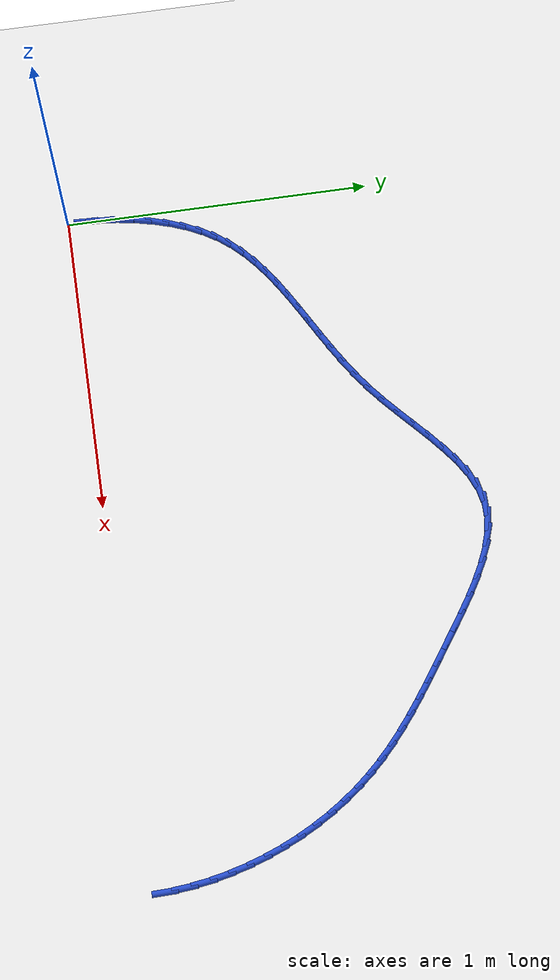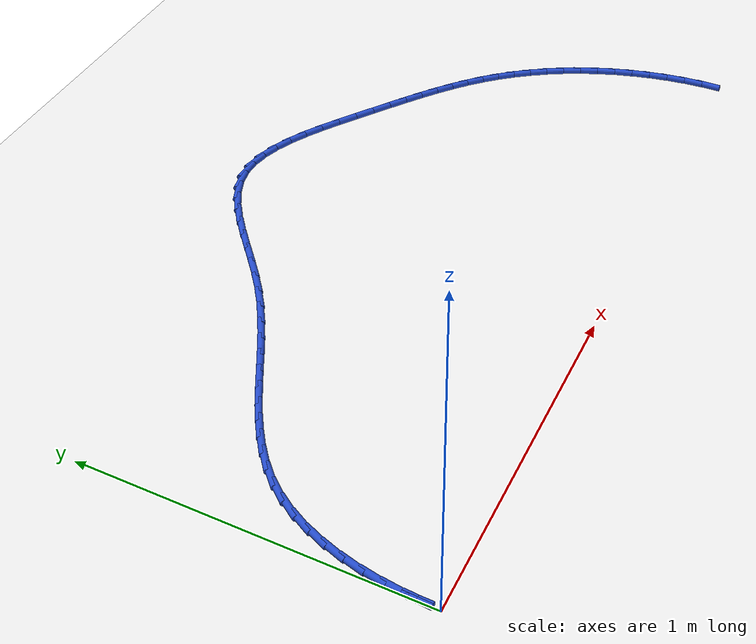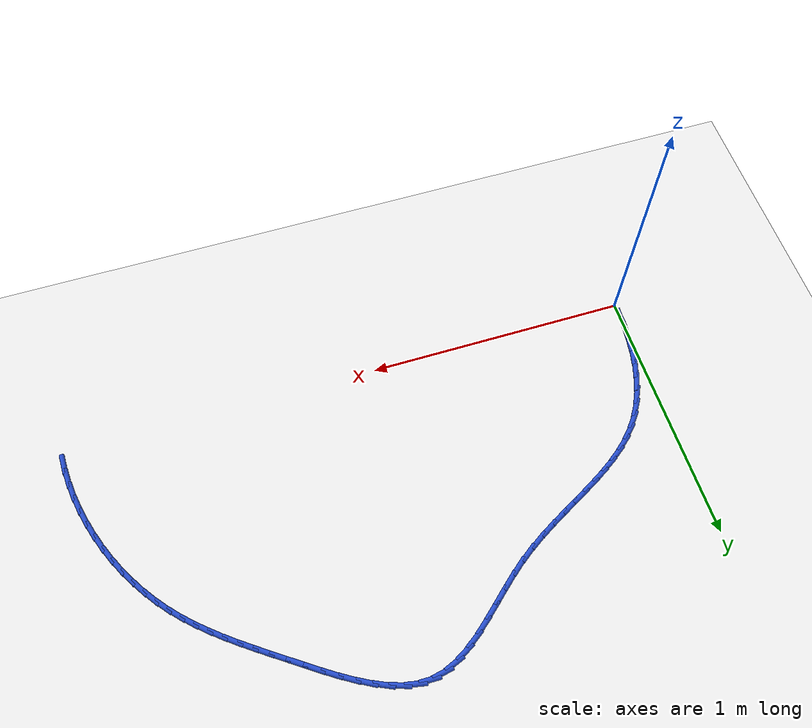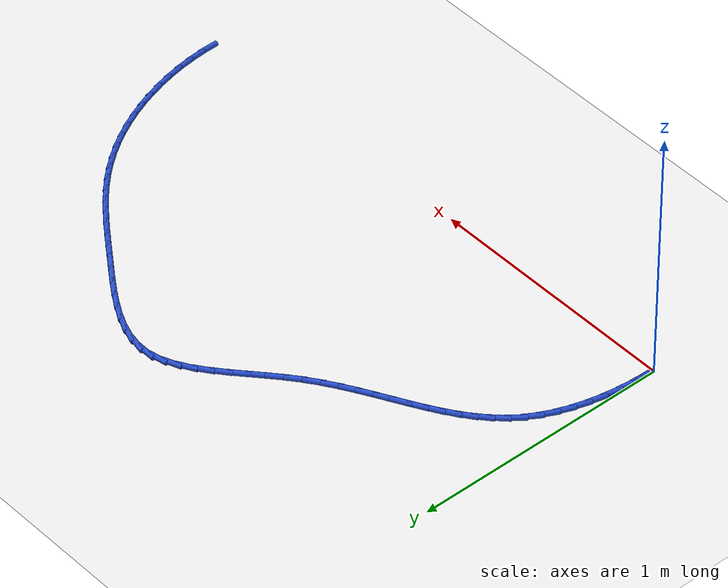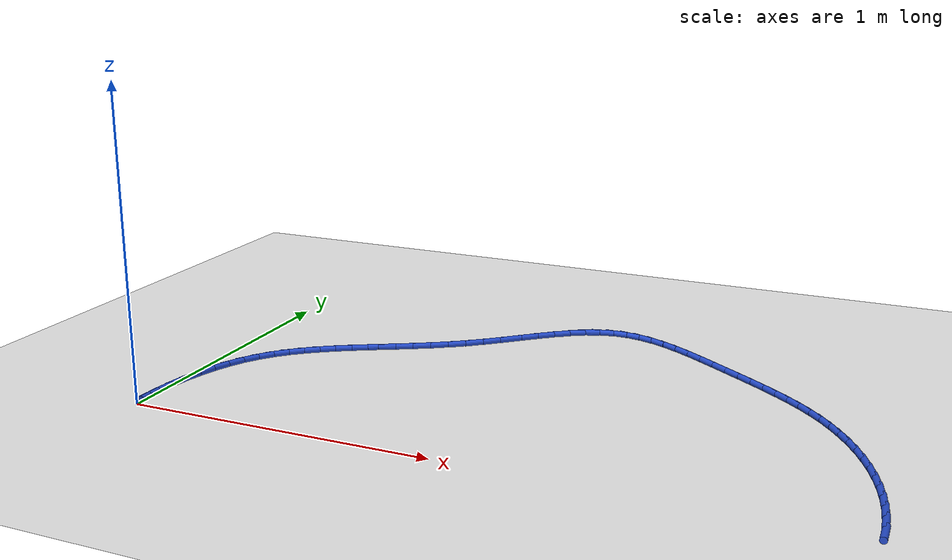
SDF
<sdf version="1.6">
 <world name="default">
  <model name="ground_plane">
   <static>1</static>
   <link name="link">
    <collision name="collision">
     <geometry><plane><normal>0 0 1</normal><size>100 100</size></plane></geometry>
     <surface><friction><ode><mu>100</mu><mu2>50</mu2></ode></friction></surface>
    </collision>
    <visual name="visual">
     <cast_shadows>0</cast_shadows>
     <geometry><plane><normal>0 0 1</normal><size>100 100</size></plane></geometry>
     <material>
      <script><uri>file://media/materials/scripts/gazebo.material</uri><name>Gazebo/WhiteGlow</name></script>
     </material>
    </visual>
   </link>
  </model>
  <model name="line">
   <link name="link_1">
    <pose>0.0006554067136951246 0.05990737557985292 0.01 0 1.57 1.507897528662807</pose>
    <collision name="collision">
     <geometry><cylinder><radius>0.01</radius><length>0.08</length></cylinder></geometry>
    </collision>
    <visual name="visual">
     <material>
      <script><name>Gazebo/Blue</name><uri>file://media/materials/scripts/gazebo.material</uri></script>
     </material>
     <geometry><cylinder><radius>0.01</radius><length>0.08</length></cylinder></geometry>
    </visual>
   </link>
   <link name="link_2">
    <pose>0.00443188199745281 0.11986867601575932 0.01 0 1.57 1.452899979616151</pose>
    <collision name="collision">
     <geometry><cylinder><radius>0.01</radius><length>0.08</length></cylinder></geometry>
    </collision>
    <visual name="visual">
     <material>
      <script><name>Gazebo/Blue</name><uri>file://media/materials/scripts/gazebo.material</uri></script>
     </material>
     <geometry><cylinder><radius>0.01</radius><length>0.08</length></cylinder></geometry>
    </visual>
   </link>
   <link name="link_3">
    <pose>0.011476056066806885 0.1793404663440371 0.01 0 1.57 1.3937061683359213</pose>
    <collision name="collision">
     <geometry><cylinder><radius>0.01</radius><length>0.08</length></cylinder></geometry>
    </collision>
    <visual name="visual">
     <material>
      <script><name>Gazebo/Blue</name><uri>file://media/materials/scripts/gazebo.material</uri></script>
     </material>
     <geometry><cylinder><radius>0.01</radius><length>0.08</length></cylinder></geometry>
    </visual>
   </link>
   <link name="link_4">
    <pose>0.021934559137291136 0.23777931160100413 0.01 0 1.57 1.3290669928238046</pose>
    <collision name="collision">
     <geometry><cylinder><radius>0.01</radius><length>0.08</length></cylinder></geometry>
    </collision>
    <visual name="visual">
     <material>
      <script><name>Gazebo/Blue</name><uri>file://media/materials/scripts/gazebo.material</uri></script>
     </material>
     <geometry><cylinder><radius>0.01</radius><length>0.08</length></cylinder></geometry>
    </visual>
   </link>
   <link name="link_5">
    <pose>0.03595402142443932 0.29464177682297815 0.01 0 1.57 1.2576273267027285</pose>
    <collision name="collision">
     <geometry><cylinder><radius>0.01</radius><length>0.08</length></cylinder></geometry>
    </collision>
    <visual name="visual">
     <material>
      <script><name>Gazebo/Blue</name><uri>file://media/materials/scripts/gazebo.material</uri></script>
     </material>
     <geometry><cylinder><radius>0.01</radius><length>0.08</length></cylinder></geometry>
    </visual>
   </link>
   <link name="link_6">
    <pose>0.05368107314378521 0.34938442704627704 0.01 0 1.57 1.1779452021089472</pose>
    <collision name="collision">
     <geometry><cylinder><radius>0.01</radius><length>0.08</length></cylinder></geometry>
    </collision>
    <visual name="visual">
     <material>
      <script><name>Gazebo/Blue</name><uri>file://media/materials/scripts/gazebo.material</uri></script>
     </material>
     <geometry><cylinder><radius>0.01</radius><length>0.08</length></cylinder></geometry>
    </visual>
   </link>
   <link name="link_7">
    <pose>0.07526234451086258 0.40146382730721863 0.01 0 1.57 1.0885700350027294</pose>
    <collision name="collision">
     <geometry><cylinder><radius>0.01</radius><length>0.08</length></cylinder></geometry>
    </collision>
    <visual name="visual">
     <material>
      <script><name>Gazebo/Blue</name><uri>file://media/materials/scripts/gazebo.material</uri></script>
     </material>
     <geometry><cylinder><radius>0.01</radius><length>0.08</length></cylinder></geometry>
    </visual>
   </link>
   <link name="link_8">
    <pose>0.1008444657412052 0.45033654264212064 0.01 0 1.57 0.9882158499053794</pose>
    <collision name="collision">
     <geometry><cylinder><radius>0.01</radius><length>0.08</length></cylinder></geometry>
    </collision>
    <visual name="visual">
     <material>
      <script><name>Gazebo/Blue</name><uri>file://media/materials/scripts/gazebo.material</uri></script>
     </material>
     <geometry><cylinder><radius>0.01</radius><length>0.08</length></cylinder></geometry>
    </visual>
   </link>
   <link name="link_9">
    <pose>0.13057406705034685 0.49545913808730097 0.01 0 1.57 0.8787944253209584</pose>
    <collision name="collision">
     <geometry><cylinder><radius>0.01</radius><length>0.08</length></cylinder></geometry>
    </collision>
    <visual name="visual">
     <material>
      <script><name>Gazebo/Blue</name><uri>file://media/materials/scripts/gazebo.material</uri></script>
     </material>
     <geometry><cylinder><radius>0.01</radius><length>0.08</length></cylinder></geometry>
    </visual>
   </link>
   <link name="link_10">
    <pose>0.16452487049318146 0.5364275307556597 0.01 0 1.57 0.7765168628768073</pose>
    <collision name="collision">
     <geometry><cylinder><radius>0.01</radius><length>0.08</length></cylinder></geometry>
    </collision>
    <visual name="visual">
     <material>
      <script><name>Gazebo/Blue</name><uri>file://media/materials/scripts/gazebo.material</uri></script>
     </material>
     <geometry><cylinder><radius>0.01</radius><length>0.08</length></cylinder></geometry>
    </visual>
   </link>
   <link name="link_11">
    <pose>0.20236895746316275 0.5736053084806385 0.01 0 1.57 0.6892861540333426</pose>
    <collision name="collision">
     <geometry><cylinder><radius>0.01</radius><length>0.08</length></cylinder></geometry>
    </collision>
    <visual name="visual">
     <material>
      <script><name>Gazebo/Blue</name><uri>file://media/materials/scripts/gazebo.material</uri></script>
     </material>
     <geometry><cylinder><radius>0.01</radius><length>0.08</length></cylinder></geometry>
    </visual>
   </link>
   <link name="link_12">
    <pose>0.24364084680346426 0.6076189875096353 0.01 0 1.57 0.6184591095254687</pose>
    <collision name="collision">
     <geometry><cylinder><radius>0.01</radius><length>0.08</length></cylinder></geometry>
    </collision>
    <visual name="visual">
     <material>
      <script><name>Gazebo/Blue</name><uri>file://media/materials/scripts/gazebo.material</uri></script>
     </material>
     <geometry><cylinder><radius>0.01</radius><length>0.08</length></cylinder></geometry>
    </visual>
   </link>
   <link name="link_13">
    <pose>0.28787493582306944 0.6390953163828605 0.01 0 1.57 0.564105356108904</pose>
    <collision name="collision">
     <geometry><cylinder><radius>0.01</radius><length>0.08</length></cylinder></geometry>
    </collision>
    <visual name="visual">
     <material>
      <script><name>Gazebo/Blue</name><uri>file://media/materials/scripts/gazebo.material</uri></script>
     </material>
     <geometry><cylinder><radius>0.01</radius><length>0.08</length></cylinder></geometry>
    </visual>
   </link>
   <link name="link_14">
    <pose>0.3346056218309619 0.6686610436405264 0.01 0 1.57 0.5255853220571985</pose>
    <collision name="collision">
     <geometry><cylinder><radius>0.01</radius><length>0.08</length></cylinder></geometry>
    </collision>
    <visual name="visual">
     <material>
      <script><name>Gazebo/Blue</name><uri>file://media/materials/scripts/gazebo.material</uri></script>
     </material>
     <geometry><cylinder><radius>0.01</radius><length>0.08</length></cylinder></geometry>
    </visual>
   </link>
   <link name="link_15">
    <pose>0.3833673021361251 0.6969429178228435 0.01 0 1.57 0.5020019516751363</pose>
    <collision name="collision">
     <geometry><cylinder><radius>0.01</radius><length>0.08</length></cylinder></geometry>
    </collision>
    <visual name="visual">
     <material>
      <script><name>Gazebo/Blue</name><uri>file://media/materials/scripts/gazebo.material</uri></script>
     </material>
     <geometry><cylinder><radius>0.01</radius><length>0.08</length></cylinder></geometry>
    </visual>
   </link>
   <link name="link_16">
    <pose>0.4336943740475426 0.7245676874700234 0.01 0 1.57 0.4924784088963204</pose>
    <collision name="collision">
     <geometry><cylinder><radius>0.01</radius><length>0.08</length></cylinder></geometry>
    </collision>
    <visual name="visual">
     <material>
      <script><name>Gazebo/Blue</name><uri>file://media/materials/scripts/gazebo.material</uri></script>
     </material>
     <geometry><cylinder><radius>0.01</radius><length>0.08</length></cylinder></geometry>
    </visual>
   </link>
   <link name="link_17">
    <pose>0.48512123487419795 0.7521621011222775 0.01 0 1.57 0.496290160502064</pose>
    <collision name="collision">
     <geometry><cylinder><radius>0.01</radius><length>0.08</length></cylinder></geometry>
    </collision>
    <visual name="visual">
     <material>
      <script><name>Gazebo/Blue</name><uri>file://media/materials/scripts/gazebo.material</uri></script>
     </material>
     <geometry><cylinder><radius>0.01</radius><length>0.08</length></cylinder></geometry>
    </visual>
   </link>
   <link name="link_18">
    <pose>0.5371822819250747 0.7803529073198169 0.01 0 1.57 0.5128951686160405</pose>
    <collision name="collision">
     <geometry><cylinder><radius>0.01</radius><length>0.08</length></cylinder></geometry>
    </collision>
    <visual name="visual">
     <material>
      <script><name>Gazebo/Blue</name><uri>file://media/materials/scripts/gazebo.material</uri></script>
     </material>
     <geometry><cylinder><radius>0.01</radius><length>0.08</length></cylinder></geometry>
    </visual>
   </link>
   <link name="link_19">
    <pose>0.5894119125091561 0.8097668546028528 0.01 0 1.57 0.5418945127169501</pose>
    <collision name="collision">
     <geometry><cylinder><radius>0.01</radius><length>0.08</length></cylinder></geometry>
    </collision>
    <visual name="visual">
     <material>
      <script><name>Gazebo/Blue</name><uri>file://media/materials/scripts/gazebo.material</uri></script>
     </material>
     <geometry><cylinder><radius>0.01</radius><length>0.08</length></cylinder></geometry>
    </visual>
   </link>
   <link name="link_20">
    <pose>0.6413445239354262 0.8410306915115966 0.01 0 1.57 0.5829411087831547</pose>
    <collision name="collision">
     <geometry><cylinder><radius>0.01</radius><length>0.08</length></cylinder></geometry>
    </collision>
    <visual name="visual">
     <material>
      <script><name>Gazebo/Blue</name><uri>file://media/materials/scripts/gazebo.material</uri></script>
     </material>
     <geometry><cylinder><radius>0.01</radius><length>0.08</length></cylinder></geometry>
    </visual>
   </link>
   <link name="link_21">
    <pose>0.6925145135128681 0.8747711665862594 0.01 0 1.57 0.6354356215921534</pose>
    <collision name="collision">
     <geometry><cylinder><radius>0.01</radius><length>0.08</length></cylinder></geometry>
    </collision>
    <visual name="visual">
     <material>
      <script><name>Gazebo/Blue</name><uri>file://media/materials/scripts/gazebo.material</uri></script>
     </material>
     <geometry><cylinder><radius>0.01</radius><length>0.08</length></cylinder></geometry>
    </visual>
   </link>
   <link name="link_22">
    <pose>0.7424600651113547 0.9116046713899145 0.01 0 1.57 0.6866020841144945</pose>
    <collision name="collision">
     <geometry><cylinder><radius>0.01</radius><length>0.08</length></cylinder></geometry>
    </collision>
    <visual name="visual">
     <material>
      <script><name>Gazebo/Blue</name><uri>file://media/materials/scripts/gazebo.material</uri></script>
     </material>
     <geometry><cylinder><radius>0.01</radius><length>0.08</length></cylinder></geometry>
    </visual>
   </link>
   <link name="link_23">
    <pose>0.7909972088710969 0.9513876341431788 0.01 0 1.57 0.7169393255033091</pose>
    <collision name="collision">
     <geometry><cylinder><radius>0.01</radius><length>0.08</length></cylinder></geometry>
    </collision>
    <visual name="visual">
     <material>
      <script><name>Gazebo/Blue</name><uri>file://media/materials/scripts/gazebo.material</uri></script>
     </material>
     <geometry><cylinder><radius>0.01</radius><length>0.08</length></cylinder></geometry>
    </visual>
   </link>
   <link name="link_24">
    <pose>0.8384046021460019 0.992711108069178 0.01 0 1.57 0.7255983637787893</pose>
    <collision name="collision">
     <geometry><cylinder><radius>0.01</radius><length>0.08</length></cylinder></geometry>
    </collision>
    <visual name="visual">
     <material>
      <script><name>Gazebo/Blue</name><uri>file://media/materials/scripts/gazebo.material</uri></script>
     </material>
     <geometry><cylinder><radius>0.01</radius><length>0.08</length></cylinder></geometry>
    </visual>
   </link>
   <link name="link_25">
    <pose>0.8850046838966965 1.0340463952202192 0.01 0 1.57 0.7122536385395872</pose>
    <collision name="collision">
     <geometry><cylinder><radius>0.01</radius><length>0.08</length></cylinder></geometry>
    </collision>
    <visual name="visual">
     <material>
      <script><name>Gazebo/Blue</name><uri>file://media/materials/scripts/gazebo.material</uri></script>
     </material>
     <geometry><cylinder><radius>0.01</radius><length>0.08</length></cylinder></geometry>
    </visual>
   </link>
   <link name="link_26">
    <pose>0.9311198930838075 1.0738647976486095 0.01 0 1.57 0.6748815703993579</pose>
    <collision name="collision">
     <geometry><cylinder><radius>0.01</radius><length>0.08</length></cylinder></geometry>
    </collision>
    <visual name="visual">
     <material>
      <script><name>Gazebo/Blue</name><uri>file://media/materials/scripts/gazebo.material</uri></script>
     </material>
     <geometry><cylinder><radius>0.01</radius><length>0.08</length></cylinder></geometry>
    </visual>
   </link>
   <link name="link_27">
    <pose>0.9770726686679618 1.110637617406656 0.01 0 1.57 0.6095547273452617</pose>
    <collision name="collision">
     <geometry><cylinder><radius>0.01</radius><length>0.08</length></cylinder></geometry>
    </collision>
    <visual name="visual">
     <material>
      <script><name>Gazebo/Blue</name><uri>file://media/materials/scripts/gazebo.material</uri></script>
     </material>
     <geometry><cylinder><radius>0.01</radius><length>0.08</length></cylinder></geometry>
    </visual>
   </link>
   <link name="link_28">
    <pose>1.023185449609786 1.1428361565466656 0.01 0 1.57 0.5105248269753733</pose>
    <collision name="collision">
     <geometry><cylinder><radius>0.01</radius><length>0.08</length></cylinder></geometry>
    </collision>
    <visual name="visual">
     <material>
      <script><name>Gazebo/Blue</name><uri>file://media/materials/scripts/gazebo.material</uri></script>
     </material>
     <geometry><cylinder><radius>0.01</radius><length>0.08</length></cylinder></geometry>
    </visual>
   </link>
   <link name="link_29">
    <pose>1.0697806748699066 1.1689317171209446 0.01 0 1.57 0.37145025236749324</pose>
    <collision name="collision">
     <geometry><cylinder><radius>0.01</radius><length>0.08</length></cylinder></geometry>
    </collision>
    <visual name="visual">
     <material>
      <script><name>Gazebo/Blue</name><uri>file://media/materials/scripts/gazebo.material</uri></script>
     </material>
     <geometry><cylinder><radius>0.01</radius><length>0.08</length></cylinder></geometry>
    </visual>
   </link>
   <link name="link_30">
    <pose>1.1171807834089509 1.1873956011818017 0.01 0 1.57 0.18941812533854546</pose>
    <collision name="collision">
     <geometry><cylinder><radius>0.01</radius><length>0.08</length></cylinder></geometry>
    </collision>
    <visual name="visual">
     <material>
      <script><name>Gazebo/Blue</name><uri>file://media/materials/scripts/gazebo.material</uri></script>
     </material>
     <geometry><cylinder><radius>0.01</radius><length>0.08</length></cylinder></geometry>
    </visual>
   </link>
   <link name="link_31">
    <pose>1.1657082141875454 1.1966991107815428 0.01 0 1.57 -0.018596459467815084</pose>
    <collision name="collision">
     <geometry><cylinder><radius>0.01</radius><length>0.08</length></cylinder></geometry>
    </collision>
    <visual name="visual">
     <material>
      <script><name>Gazebo/Blue</name><uri>file://media/materials/scripts/gazebo.material</uri></script>
     </material>
     <geometry><cylinder><radius>0.01</radius><length>0.08</length></cylinder></geometry>
    </visual>
   </link>
   <link name="link_32">
    <pose>1.2155856056608831 1.1957714609543273 0.01 0 1.57 -0.19829320553366106</pose>
    <collision name="collision">
     <geometry><cylinder><radius>0.01</radius><length>0.08</length></cylinder></geometry>
    </collision>
    <visual name="visual">
     <material>
      <script><name>Gazebo/Blue</name><uri>file://media/materials/scripts/gazebo.material</uri></script>
     </material>
     <geometry><cylinder><radius>0.01</radius><length>0.08</length></cylinder></geometry>
    </visual>
   </link>
   <link name="link_33">
    <pose>1.266604457563094 1.185520053282519 0.01 0 1.57 -0.3365253667606733</pose>
    <collision name="collision">
     <geometry><cylinder><radius>0.01</radius><length>0.08</length></cylinder></geometry>
    </collision>
    <visual name="visual">
     <material>
      <script><name>Gazebo/Blue</name><uri>file://media/materials/scripts/gazebo.material</uri></script>
     </material>
     <geometry><cylinder><radius>0.01</radius><length>0.08</length></cylinder></geometry>
    </visual>
   </link>
   <link name="link_34">
    <pose>1.3184398722162711 1.1673863536379754 0.01 0 1.57 -0.4390601657703653</pose>
    <collision name="collision">
     <geometry><cylinder><radius>0.01</radius><length>0.08</length></cylinder></geometry>
    </collision>
    <visual name="visual">
     <material>
      <script><name>Gazebo/Blue</name><uri>file://media/materials/scripts/gazebo.material</uri></script>
     </material>
     <geometry><cylinder><radius>0.01</radius><length>0.08</length></cylinder></geometry>
    </visual>
   </link>
   <link name="link_35">
    <pose>1.3707669501230046 1.1428118362409518 0.01 0 1.57 -0.5130559663326266</pose>
    <collision name="collision">
     <geometry><cylinder><radius>0.01</radius><length>0.08</length></cylinder></geometry>
    </collision>
    <visual name="visual">
     <material>
      <script><name>Gazebo/Blue</name><uri>file://media/materials/scripts/gazebo.material</uri></script>
     </material>
     <geometry><cylinder><radius>0.01</radius><length>0.08</length></cylinder></geometry>
    </visual>
   </link>
   <link name="link_36">
    <pose>1.4232607917858835 1.1132379753117045 0.01 0 1.57 -0.5643754900946105</pose>
    <collision name="collision">
     <geometry><cylinder><radius>0.01</radius><length>0.08</length></cylinder></geometry>
    </collision>
    <visual name="visual">
     <material>
      <script><name>Gazebo/Blue</name><uri>file://media/materials/scripts/gazebo.material</uri></script>
     </material>
     <geometry><cylinder><radius>0.01</radius><length>0.08</length></cylinder></geometry>
    </visual>
   </link>
   <link name="link_37">
    <pose>1.4755964977074982 1.0801062450704895 0.01 0 1.57 -0.5970224703302515</pose>
    <collision name="collision">
     <geometry><cylinder><radius>0.01</radius><length>0.08</length></cylinder></geometry>
    </collision>
    <visual name="visual">
     <material>
      <script><name>Gazebo/Blue</name><uri>file://media/materials/scripts/gazebo.material</uri></script>
     </material>
     <geometry><cylinder><radius>0.01</radius><length>0.08</length></cylinder></geometry>
    </visual>
   </link>
   <link name="link_38">
    <pose>1.527449168390437 1.044858119737563 0.01 0 1.57 -0.6132424160477102</pose>
    <collision name="collision">
     <geometry><cylinder><radius>0.01</radius><length>0.08</length></cylinder></geometry>
    </collision>
    <visual name="visual">
     <material>
      <script><name>Gazebo/Blue</name><uri>file://media/materials/scripts/gazebo.material</uri></script>
     </material>
     <geometry><cylinder><radius>0.01</radius><length>0.08</length></cylinder></geometry>
    </visual>
   </link>
   <link name="link_39">
    <pose>1.5784939043372903 1.0089350735331806 0.01 0 1.57 -0.6153289237647928</pose>
    <collision name="collision">
     <geometry><cylinder><radius>0.01</radius><length>0.08</length></cylinder></geometry>
    </collision>
    <visual name="visual">
     <material>
      <script><name>Gazebo/Blue</name><uri>file://media/materials/scripts/gazebo.material</uri></script>
     </material>
     <geometry><cylinder><radius>0.01</radius><length>0.08</length></cylinder></geometry>
    </visual>
   </link>
   <link name="link_40">
    <pose>1.6284218885549504 0.9736419486976658 0.01 0 1.57 -0.6171711347222751</pose>
    <collision name="collision">
     <geometry><cylinder><radius>0.01</radius><length>0.08</length></cylinder></geometry>
    </collision>
    <visual name="visual">
     <material>
      <script><name>Gazebo/Blue</name><uri>file://media/materials/scripts/gazebo.material</uri></script>
     </material>
     <geometry><cylinder><radius>0.01</radius><length>0.08</length></cylinder></geometry>
    </visual>
   </link>
   <link name="link_41">
    <pose>1.6770606031228654 0.93912563272784 0.01 0 1.57 -0.6262364242708631</pose>
    <collision name="collision">
     <geometry><cylinder><radius>0.01</radius><length>0.08</length></cylinder></geometry>
    </collision>
    <visual name="visual">
     <material>
      <script><name>Gazebo/Blue</name><uri>file://media/materials/scripts/gazebo.material</uri></script>
     </material>
     <geometry><cylinder><radius>0.01</radius><length>0.08</length></cylinder></geometry>
    </visual>
   </link>
   <link name="link_42">
    <pose>1.724306180443237 0.9049497812218058 0.01 0 1.57 -0.6430022747799751</pose>
    <collision name="collision">
     <geometry><cylinder><radius>0.01</radius><length>0.08</length></cylinder></geometry>
    </collision>
    <visual name="visual">
     <material>
      <script><name>Gazebo/Blue</name><uri>file://media/materials/scripts/gazebo.material</uri></script>
     </material>
     <geometry><cylinder><radius>0.01</radius><length>0.08</length></cylinder></geometry>
    </visual>
   </link>
   <link name="link_43">
    <pose>1.7700552761914252 0.8706736042108629 0.01 0 1.57 -0.6677674198291469</pose>
    <collision name="collision">
     <geometry><cylinder><radius>0.01</radius><length>0.08</length></cylinder></geometry>
    </collision>
    <visual name="visual">
     <material>
      <script><name>Gazebo/Blue</name><uri>file://media/materials/scripts/gazebo.material</uri></script>
     </material>
     <geometry><cylinder><radius>0.01</radius><length>0.08</length></cylinder></geometry>
    </visual>
   </link>
   <link name="link_44">
    <pose>1.8142045460427865 0.835856311726311 0.01 0 1.57 -0.7006520913364823</pose>
    <collision name="collision">
     <geometry><cylinder><radius>0.01</radius><length>0.08</length></cylinder></geometry>
    </collision>
    <visual name="visual">
     <material>
      <script><name>Gazebo/Blue</name><uri>file://media/materials/scripts/gazebo.material</uri></script>
     </material>
     <geometry><cylinder><radius>0.01</radius><length>0.08</length></cylinder></geometry>
    </visual>
   </link>
   <link name="link_45">
    <pose>1.8566506456726815 0.800057113799449 0.01 0 1.57 -0.7415318078993242</pose>
    <collision name="collision">
     <geometry><cylinder><radius>0.01</radius><length>0.08</length></cylinder></geometry>
    </collision>
    <visual name="visual">
     <material>
      <script><name>Gazebo/Blue</name><uri>file://media/materials/scripts/gazebo.material</uri></script>
     </material>
     <geometry><cylinder><radius>0.01</radius><length>0.08</length></cylinder></geometry>
    </visual>
   </link>
   <link name="link_46">
    <pose>1.8972902307564665 0.7628352204615765 0.01 0 1.57 -0.7899686131636344</pose>
    <collision name="collision">
     <geometry><cylinder><radius>0.01</radius><length>0.08</length></cylinder></geometry>
    </collision>
    <visual name="visual">
     <material>
      <script><name>Gazebo/Blue</name><uri>file://media/materials/scripts/gazebo.material</uri></script>
     </material>
     <geometry><cylinder><radius>0.01</radius><length>0.08</length></cylinder></geometry>
    </visual>
   </link>
   <link name="link_47">
    <pose>1.9360199569695016 0.7237498417439924 0.01 0 1.57 -0.8450908340120663</pose>
    <collision name="collision">
     <geometry><cylinder><radius>0.01</radius><length>0.08</length></cylinder></geometry>
    </collision>
    <visual name="visual">
     <material>
      <script><name>Gazebo/Blue</name><uri>file://media/materials/scripts/gazebo.material</uri></script>
     </material>
     <geometry><cylinder><radius>0.01</radius><length>0.08</length></cylinder></geometry>
    </visual>
   </link>
   <link name="link_48">
    <pose>1.9727364392885132 0.6823657844649665 0.01 0 1.57 -0.902975375750154</pose>
    <collision name="collision">
     <geometry><cylinder><radius>0.01</radius><length>0.08</length></cylinder></geometry>
    </collision>
    <visual name="visual">
     <material>
      <script><name>Gazebo/Blue</name><uri>file://media/materials/scripts/gazebo.material</uri></script>
     </material>
     <geometry><cylinder><radius>0.01</radius><length>0.08</length></cylinder></geometry>
    </visual>
   </link>
   <link name="link_49">
    <pose>2.0073344636415458 0.6384993822261547 0.01 0 1.57 -0.9594510200841077</pose>
    <collision name="collision">
     <geometry><cylinder><radius>0.01</radius><length>0.08</length></cylinder></geometry>
    </collision>
    <visual name="visual">
     <material>
      <script><name>Gazebo/Blue</name><uri>file://media/materials/scripts/gazebo.material</uri></script>
     </material>
     <geometry><cylinder><radius>0.01</radius><length>0.08</length></cylinder></geometry>
    </visual>
   </link>
   <link name="link_50">
    <pose>2.039706286359046 0.5923148333712196 0.01 0 1.57 -1.0145511326093544</pose>
    <collision name="collision">
     <geometry><cylinder><radius>0.01</radius><length>0.08</length></cylinder></geometry>
    </collision>
    <visual name="visual">
     <material>
      <script><name>Gazebo/Blue</name><uri>file://media/materials/scripts/gazebo.material</uri></script>
     </material>
     <geometry><cylinder><radius>0.01</radius><length>0.08</length></cylinder></geometry>
    </visual>
   </link>
   <link name="link_51">
    <pose>2.069743978328492 0.5440018379555683 0.01 0 1.57 -1.068607653140574</pose>
    <collision name="collision">
     <geometry><cylinder><radius>0.01</radius><length>0.08</length></cylinder></geometry>
    </collision>
    <visual name="visual">
     <material>
      <script><name>Gazebo/Blue</name><uri>file://media/materials/scripts/gazebo.material</uri></script>
     </material>
     <geometry><cylinder><radius>0.01</radius><length>0.08</length></cylinder></geometry>
    </visual>
   </link>
   <link name="link_52">
    <pose>2.0973396104373663 0.4937500960346068 0.01 0 1.57 -1.1219445635180438</pose>
    <collision name="collision">
     <geometry><cylinder><radius>0.01</radius><length>0.08</length></cylinder></geometry>
    </collision>
    <visual name="visual">
     <material>
      <script><name>Gazebo/Blue</name><uri>file://media/materials/scripts/gazebo.material</uri></script>
     </material>
     <geometry><cylinder><radius>0.01</radius><length>0.08</length></cylinder></geometry>
    </visual>
   </link>
   <link name="link_53">
    <pose>2.122385253573148 0.44174930766374143 0.01 0 1.57 -1.1748761872193163</pose>
    <collision name="collision">
     <geometry><cylinder><radius>0.01</radius><length>0.08</length></cylinder></geometry>
    </collision>
    <visual name="visual">
     <material>
      <script><name>Gazebo/Blue</name><uri>file://media/materials/scripts/gazebo.material</uri></script>
     </material>
     <geometry><cylinder><radius>0.01</radius><length>0.08</length></cylinder></geometry>
    </visual>
   </link>
   <link name="link_54">
    <pose>2.1447729786233176 0.3881891728983782 0.01 0 1.57 -1.2277062086967911</pose>
    <collision name="collision">
     <geometry><cylinder><radius>0.01</radius><length>0.08</length></cylinder></geometry>
    </collision>
    <visual name="visual">
     <material>
      <script><name>Gazebo/Blue</name><uri>file://media/materials/scripts/gazebo.material</uri></script>
     </material>
     <geometry><cylinder><radius>0.01</radius><length>0.08</length></cylinder></geometry>
    </visual>
   </link>
   <link name="link_55">
    <pose>2.164394856475356 0.333259391793924 0.01 0 1.57 -1.280726917432268</pose>
    <collision name="collision">
     <geometry><cylinder><radius>0.01</radius><length>0.08</length></cylinder></geometry>
    </collision>
    <visual name="visual">
     <material>
      <script><name>Gazebo/Blue</name><uri>file://media/materials/scripts/gazebo.material</uri></script>
     </material>
     <geometry><cylinder><radius>0.01</radius><length>0.08</length></cylinder></geometry>
    </visual>
   </link>
   <link name="link_56">
    <pose>2.181142958016744 0.27714966440578437 0.01 0 1.57 -1.3342182601457273</pose>
    <collision name="collision">
     <geometry><cylinder><radius>0.01</radius><length>0.08</length></cylinder></geometry>
    </collision>
    <visual name="visual">
     <material>
      <script><name>Gazebo/Blue</name><uri>file://media/materials/scripts/gazebo.material</uri></script>
     </material>
     <geometry><cylinder><radius>0.01</radius><length>0.08</length></cylinder></geometry>
    </visual>
   </link>
   <link name="link_57">
    <pose>2.1949093541349614 0.22004969078936631 0.01 0 1.57 -1.3884463418591222</pose>
    <collision name="collision">
     <geometry><cylinder><radius>0.01</radius><length>0.08</length></cylinder></geometry>
    </collision>
    <visual name="visual">
     <material>
      <script><name>Gazebo/Blue</name><uri>file://media/materials/scripts/gazebo.material</uri></script>
     </material>
     <geometry><cylinder><radius>0.01</radius><length>0.08</length></cylinder></geometry>
    </visual>
   </link>
   <link name="link_58">
    <pose>2.2055861157174883 0.1621491710000753 0.01 0 1.57 -1.4436442178082967</pose>
    <collision name="collision">
     <geometry><cylinder><radius>0.01</radius><length>0.08</length></cylinder></geometry>
    </collision>
    <visual name="visual">
     <material>
      <script><name>Gazebo/Blue</name><uri>file://media/materials/scripts/gazebo.material</uri></script>
     </material>
     <geometry><cylinder><radius>0.01</radius><length>0.08</length></cylinder></geometry>
    </visual>
   </link>
   <link name="link_59">
    <pose>2.2130662734160262 0.1036381323077685 0.01 0 1.57 -1.4991888373905211</pose>
    <collision name="collision">
     <geometry><cylinder><radius>0.01</radius><length>0.08</length></cylinder></geometry>
    </collision>
    <visual name="visual">
     <material>
      <script><name>Gazebo/Blue</name><uri>file://media/materials/scripts/gazebo.material</uri></script>
     </material>
     <geometry><cylinder><radius>0.01</radius><length>0.08</length></cylinder></geometry>
    </visual>
   </link>
   <link name="link_60">
    <pose>2.2172922324783193 0.04472343536799685 0.01 0 1.57 -1.554105261394131</pose>
    <collision name="collision">
     <geometry><cylinder><radius>0.01</radius><length>0.08</length></cylinder></geometry>
    </collision>
    <visual name="visual">
     <material>
      <script><name>Gazebo/Blue</name><uri>file://media/materials/scripts/gazebo.material</uri></script>
     </material>
     <geometry><cylinder><radius>0.01</radius><length>0.08</length></cylinder></geometry>
    </visual>
   </link>
   <link name="link_121">
    <pose>0.0006271826159371385 0.05997297625382998 0.01 0 1.57 1.560338954278957</pose>
    <collision name="collision">
     <geometry><cylinder><radius>0.01</radius><length>0.08</length></cylinder></geometry>
    </collision>
    <visual name="visual">
     <material>
      <script><name>Gazebo/Blue</name><uri>file://media/materials/scripts/gazebo.material</uri></script>
     </material>
     <geometry><cylinder><radius>0.01</radius><length>0.08</length></cylinder></geometry>
    </visual>
   </link>
  </model>
 </world>
</sdf>
